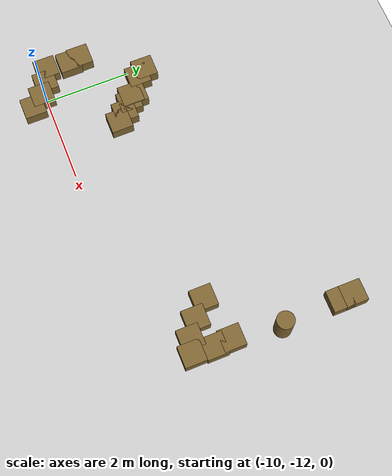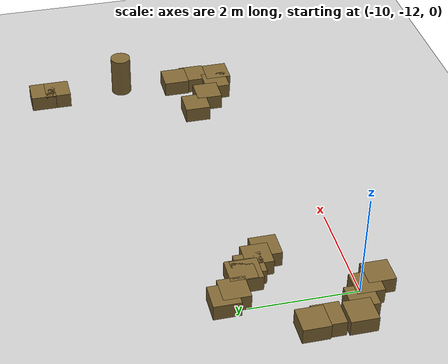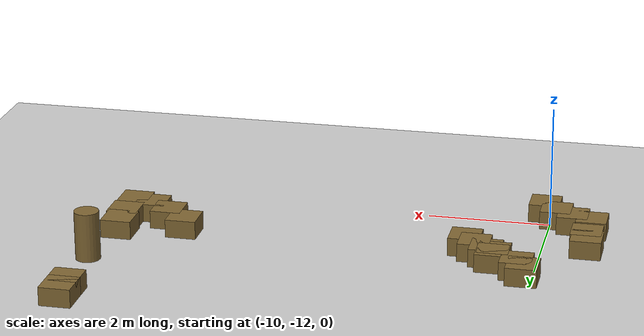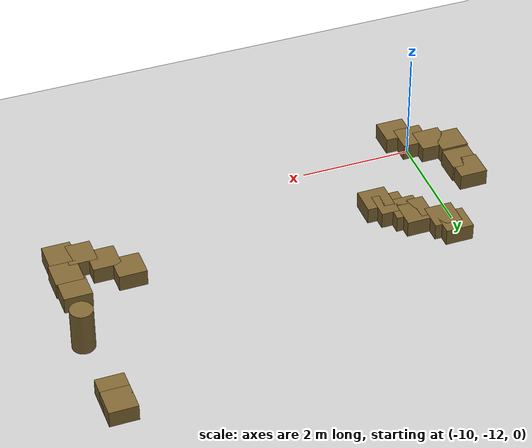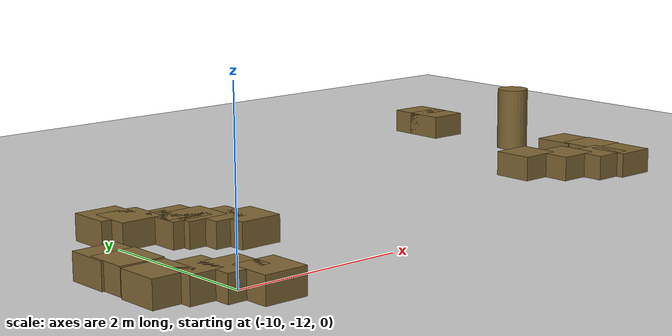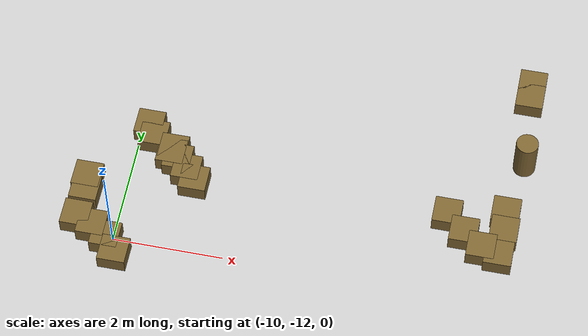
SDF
<sdf version="1.7">
 <world name="default">
  <model name="ground_plane">
   <static>1</static>
   <link name="link">
    <collision name="collision">
     <geometry><plane><normal>0 0 1</normal><size>100 100</size></plane></geometry>
     <surface><friction><ode><mu>100</mu><mu2>50</mu2></ode></friction></surface>
    </collision>
    <visual name="visual">
     <cast_shadows>0</cast_shadows>
     <geometry><plane><normal>0 0 1</normal><size>100 100</size></plane></geometry>
     <material>
      <script><uri>file://media/materials/scripts/gazebo.material</uri><name>Gazebo/Grey</name></script>
     </material>
    </visual>
   </link>
  </model>
  <model name="mini_cylinder_0_clone_0_clone_0_clone_8">
   <link name="link">
    <inertial>
     <mass>1</mass>
     <inertia><ixx>0.145833</ixx><ixy>0</ixy><ixz>0</ixz><iyy>0.145833</iyy><iyz>0</iyz><izz>0.125</izz></inertia>
    </inertial>
    <visual name="visual">
     <geometry><cylinder><radius>0.2</radius><length>0.8</length></cylinder></geometry>
     <material>
      <script><name>Gazebo/Grey</name><uri>file://media/materials/scripts/gazebo.material</uri></script>
      <shader type="vertex"><normal_map>__default__</normal_map></shader>
      <ambient>0.5 0.4 0.2 1</ambient>
      <diffuse>0.7 0.7 0.7 1</diffuse>
      <specular>0.01 0.01 0.01 1</specular>
      <emissive>0 0 0 1</emissive>
     </material>
    </visual>
    <collision name="collision">
     <geometry><cylinder><radius>0.2</radius><length>0.8</length></cylinder></geometry>
     <surface>
      <friction>
       <ode><mu>1</mu><mu2>1</mu2><fdir1>0 0 0</fdir1><slip1>0</slip1><slip2>0</slip2></ode>
       <torsional>
        <coefficient>1</coefficient>
        <patch_radius>0</patch_radius>
        <surface_radius>0</surface_radius>
        <use_patch_radius>1</use_patch_radius>
        <ode><slip>0</slip></ode>
       </torsional>
      </friction>
      <bounce><restitution_coefficient>0</restitution_coefficient><threshold>1e+06</threshold></bounce>
      <contact>
       <collide_without_contact>0</collide_without_contact>
       <collide_without_contact_bitmask>1</collide_without_contact_bitmask>
       <collide_bitmask>1</collide_bitmask>
       <ode>
        <soft_cfm>0</soft_cfm>
        <soft_erp>0.2</soft_erp>
        <kp>1e+13</kp>
        <kd>1</kd>
        <max_vel>0.01</max_vel>
        <min_depth>0</min_depth>
       </ode>
       <bullet>
        <split_impulse>1</split_impulse>
        <split_impulse_penetration_threshold>-0.01</split_impulse_penetration_threshold>
        <soft_cfm>0</soft_cfm>
        <soft_erp>0.2</soft_erp>
        <kp>1e+13</kp>
        <kd>1</kd>
       </bullet>
      </contact>
     </surface>
    </collision>
   </link>
   <static>1</static>
   <pose>-3.04643 -9.08417 0.4 0 -0 0</pose>
  </model>
  <model name="mini_box_clone_clone_3_clone_0_clone_0_clone_9">
   <link name="link">
    <inertial>
     <mass>1</mass>
     <inertia>
      <ixx>0.166667</ixx>
      <ixy>0</ixy>
      <ixz>0</ixz>
      <iyy>0.166667</iyy>
      <iyz>0</iyz>
      <izz>0.166667</izz>
     </inertia>
    </inertial>
    <visual name="visual">
     <geometry><box><size>0.5 0.5 0.3</size></box></geometry>
     <material>
      <script><name>Gazebo/Grey</name><uri>file://media/materials/scripts/gazebo.material</uri></script>
      <shader type="vertex"><normal_map>__default__</normal_map></shader>
      <ambient>0.5 0.4 0.2 1</ambient>
      <diffuse>0.7 0.7 0.7 1</diffuse>
      <specular>0.01 0.01 0.01 1</specular>
      <emissive>0 0 0 1</emissive>
     </material>
    </visual>
    <collision name="collision">
     <geometry><box><size>0.5 0.5 0.3</size></box></geometry>
     <surface>
      <friction>
       <ode><mu>1</mu><mu2>1</mu2><fdir1>0 0 0</fdir1><slip1>0</slip1><slip2>0</slip2></ode>
       <torsional>
        <coefficient>1</coefficient>
        <patch_radius>0</patch_radius>
        <surface_radius>0</surface_radius>
        <use_patch_radius>1</use_patch_radius>
        <ode><slip>0</slip></ode>
       </torsional>
      </friction>
      <bounce><restitution_coefficient>0</restitution_coefficient><threshold>1e+06</threshold></bounce>
      <contact>
       <collide_without_contact>0</collide_without_contact>
       <collide_without_contact_bitmask>1</collide_without_contact_bitmask>
       <collide_bitmask>1</collide_bitmask>
       <ode>
        <soft_cfm>0</soft_cfm>
        <soft_erp>0.2</soft_erp>
        <kp>1e+13</kp>
        <kd>1</kd>
        <max_vel>0.01</max_vel>
        <min_depth>0</min_depth>
       </ode>
       <bullet>
        <split_impulse>1</split_impulse>
        <split_impulse_penetration_threshold>-0.01</split_impulse_penetration_threshold>
        <soft_cfm>0</soft_cfm>
        <soft_erp>0.2</soft_erp>
        <kp>1e+13</kp>
        <kd>1</kd>
       </bullet>
      </contact>
     </surface>
    </collision>
   </link>
   <static>1</static>
   <pose>-10.7131 -10.9191 0.15 0 -0 0</pose>
  </model>
  <model name="mini_box_clone_clone_0_clone_29">
   <link name="link">
    <inertial>
     <mass>1</mass>
     <inertia>
      <ixx>0.166667</ixx>
      <ixy>0</ixy>
      <ixz>0</ixz>
      <iyy>0.166667</iyy>
      <iyz>0</iyz>
      <izz>0.166667</izz>
     </inertia>
    </inertial>
    <visual name="visual">
     <geometry><box><size>0.5 0.5 0.3</size></box></geometry>
     <material>
      <script><name>Gazebo/Grey</name><uri>file://media/materials/scripts/gazebo.material</uri></script>
      <shader type="vertex"><normal_map>__default__</normal_map></shader>
      <ambient>0.5 0.4 0.2 1</ambient>
      <diffuse>0.7 0.7 0.7 1</diffuse>
      <specular>0.01 0.01 0.01 1</specular>
      <emissive>0 0 0 1</emissive>
     </material>
    </visual>
    <collision name="collision">
     <geometry><box><size>0.5 0.5 0.3</size></box></geometry>
     <surface>
      <friction>
       <ode><mu>1</mu><mu2>1</mu2><fdir1>0 0 0</fdir1><slip1>0</slip1><slip2>0</slip2></ode>
       <torsional>
        <coefficient>1</coefficient>
        <patch_radius>0</patch_radius>
        <surface_radius>0</surface_radius>
        <use_patch_radius>1</use_patch_radius>
        <ode><slip>0</slip></ode>
       </torsional>
      </friction>
      <bounce><restitution_coefficient>0</restitution_coefficient><threshold>1e+06</threshold></bounce>
      <contact>
       <collide_without_contact>0</collide_without_contact>
       <collide_without_contact_bitmask>1</collide_without_contact_bitmask>
       <collide_bitmask>1</collide_bitmask>
       <ode>
        <soft_cfm>0</soft_cfm>
        <soft_erp>0.2</soft_erp>
        <kp>1e+13</kp>
        <kd>1</kd>
        <max_vel>0.01</max_vel>
        <min_depth>0</min_depth>
       </ode>
       <bullet>
        <split_impulse>1</split_impulse>
        <split_impulse_penetration_threshold>-0.01</split_impulse_penetration_threshold>
        <soft_cfm>0</soft_cfm>
        <soft_erp>0.2</soft_erp>
        <kp>1e+13</kp>
        <kd>1</kd>
       </bullet>
      </contact>
     </surface>
    </collision>
   </link>
   <static>1</static>
   <pose>-3.1468 -7.71088 0.15 0 -0 0</pose>
  </model>
  <model name="mini_box_clone_clone_0_clone_30">
   <link name="link">
    <inertial>
     <mass>1</mass>
     <inertia>
      <ixx>0.166667</ixx>
      <ixy>0</ixy>
      <ixz>0</ixz>
      <iyy>0.166667</iyy>
      <iyz>0</iyz>
      <izz>0.166667</izz>
     </inertia>
    </inertial>
    <visual name="visual">
     <geometry><box><size>0.5 0.5 0.3</size></box></geometry>
     <material>
      <script><name>Gazebo/Grey</name><uri>file://media/materials/scripts/gazebo.material</uri></script>
      <shader type="vertex"><normal_map>__default__</normal_map></shader>
      <ambient>0.5 0.4 0.2 1</ambient>
      <diffuse>0.7 0.7 0.7 1</diffuse>
      <specular>0.01 0.01 0.01 1</specular>
      <emissive>0 0 0 1</emissive>
     </material>
    </visual>
    <collision name="collision">
     <geometry><box><size>0.5 0.5 0.3</size></box></geometry>
     <surface>
      <friction>
       <ode><mu>1</mu><mu2>1</mu2><fdir1>0 0 0</fdir1><slip1>0</slip1><slip2>0</slip2></ode>
       <torsional>
        <coefficient>1</coefficient>
        <patch_radius>0</patch_radius>
        <surface_radius>0</surface_radius>
        <use_patch_radius>1</use_patch_radius>
        <ode><slip>0</slip></ode>
       </torsional>
      </friction>
      <bounce><restitution_coefficient>0</restitution_coefficient><threshold>1e+06</threshold></bounce>
      <contact>
       <collide_without_contact>0</collide_without_contact>
       <collide_without_contact_bitmask>1</collide_without_contact_bitmask>
       <collide_bitmask>1</collide_bitmask>
       <ode>
        <soft_cfm>0</soft_cfm>
        <soft_erp>0.2</soft_erp>
        <kp>1e+13</kp>
        <kd>1</kd>
        <max_vel>0.01</max_vel>
        <min_depth>0</min_depth>
       </ode>
       <bullet>
        <split_impulse>1</split_impulse>
        <split_impulse_penetration_threshold>-0.01</split_impulse_penetration_threshold>
        <soft_cfm>0</soft_cfm>
        <soft_erp>0.2</soft_erp>
        <kp>1e+13</kp>
        <kd>1</kd>
       </bullet>
      </contact>
     </surface>
    </collision>
   </link>
   <static>1</static>
   <pose>-3.1468 -7.41264 0.15 0 -0 0</pose>
  </model>
  <model name="mini_box_clone_clone_0_clone_42">
   <link name="link">
    <inertial>
     <mass>1</mass>
     <inertia>
      <ixx>0.166667</ixx>
      <ixy>0</ixy>
      <ixz>0</ixz>
      <iyy>0.166667</iyy>
      <iyz>0</iyz>
      <izz>0.166667</izz>
     </inertia>
    </inertial>
    <visual name="visual">
     <geometry><box><size>0.5 0.5 0.3</size></box></geometry>
     <material>
      <script><name>Gazebo/Grey</name><uri>file://media/materials/scripts/gazebo.material</uri></script>
      <shader type="vertex"><normal_map>__default__</normal_map></shader>
      <ambient>0.5 0.4 0.2 1</ambient>
      <diffuse>0.7 0.7 0.7 1</diffuse>
      <specular>0.01 0.01 0.01 1</specular>
      <emissive>0 0 0 1</emissive>
     </material>
    </visual>
    <collision name="collision">
     <geometry><box><size>0.5 0.5 0.3</size></box></geometry>
     <surface>
      <friction>
       <ode><mu>1</mu><mu2>1</mu2><fdir1>0 0 0</fdir1><slip1>0</slip1><slip2>0</slip2></ode>
       <torsional>
        <coefficient>1</coefficient>
        <patch_radius>0</patch_radius>
        <surface_radius>0</surface_radius>
        <use_patch_radius>1</use_patch_radius>
        <ode><slip>0</slip></ode>
       </torsional>
      </friction>
      <bounce><restitution_coefficient>0</restitution_coefficient><threshold>1e+06</threshold></bounce>
      <contact>
       <collide_without_contact>0</collide_without_contact>
       <collide_without_contact_bitmask>1</collide_without_contact_bitmask>
       <collide_bitmask>1</collide_bitmask>
       <ode>
        <soft_cfm>0</soft_cfm>
        <soft_erp>0.2</soft_erp>
        <kp>1e+13</kp>
        <kd>1</kd>
        <max_vel>0.01</max_vel>
        <min_depth>0</min_depth>
       </ode>
       <bullet>
        <split_impulse>1</split_impulse>
        <split_impulse_penetration_threshold>-0.01</split_impulse_penetration_threshold>
        <soft_cfm>0</soft_cfm>
        <soft_erp>0.2</soft_erp>
        <kp>1e+13</kp>
        <kd>1</kd>
       </bullet>
      </contact>
     </surface>
    </collision>
   </link>
   <static>1</static>
   <pose>-3.22144 -11.093 0.15 0 -0 0</pose>
  </model>
  <model name="mini_box_clone_clone_0_clone_43">
   <link name="link">
    <inertial>
     <mass>1</mass>
     <inertia>
      <ixx>0.166667</ixx>
      <ixy>0</ixy>
      <ixz>0</ixz>
      <iyy>0.166667</iyy>
      <iyz>0</iyz>
      <izz>0.166667</izz>
     </inertia>
    </inertial>
    <visual name="visual">
     <geometry><box><size>0.5 0.5 0.3</size></box></geometry>
     <material>
      <script><name>Gazebo/Grey</name><uri>file://media/materials/scripts/gazebo.material</uri></script>
      <shader type="vertex"><normal_map>__default__</normal_map></shader>
      <ambient>0.5 0.4 0.2 1</ambient>
      <diffuse>0.7 0.7 0.7 1</diffuse>
      <specular>0.01 0.01 0.01 1</specular>
      <emissive>0 0 0 1</emissive>
     </material>
    </visual>
    <collision name="collision">
     <geometry><box><size>0.5 0.5 0.3</size></box></geometry>
     <surface>
      <friction>
       <ode><mu>1</mu><mu2>1</mu2><fdir1>0 0 0</fdir1><slip1>0</slip1><slip2>0</slip2></ode>
       <torsional>
        <coefficient>1</coefficient>
        <patch_radius>0</patch_radius>
        <surface_radius>0</surface_radius>
        <use_patch_radius>1</use_patch_radius>
        <ode><slip>0</slip></ode>
       </torsional>
      </friction>
      <bounce><restitution_coefficient>0</restitution_coefficient><threshold>1e+06</threshold></bounce>
      <contact>
       <collide_without_contact>0</collide_without_contact>
       <collide_without_contact_bitmask>1</collide_without_contact_bitmask>
       <collide_bitmask>1</collide_bitmask>
       <ode>
        <soft_cfm>0</soft_cfm>
        <soft_erp>0.2</soft_erp>
        <kp>1e+13</kp>
        <kd>1</kd>
        <max_vel>0.01</max_vel>
        <min_depth>0</min_depth>
       </ode>
       <bullet>
        <split_impulse>1</split_impulse>
        <split_impulse_penetration_threshold>-0.01</split_impulse_penetration_threshold>
        <soft_cfm>0</soft_cfm>
        <soft_erp>0.2</soft_erp>
        <kp>1e+13</kp>
        <kd>1</kd>
       </bullet>
      </contact>
     </surface>
    </collision>
   </link>
   <static>1</static>
   <pose>-3.54472 -11 0.15 0 -0 0</pose>
  </model>
  <model name="mini_box_clone_clone_0_clone_44">
   <link name="link">
    <inertial>
     <mass>1</mass>
     <inertia>
      <ixx>0.166667</ixx>
      <ixy>0</ixy>
      <ixz>0</ixz>
      <iyy>0.166667</iyy>
      <iyz>0</iyz>
      <izz>0.166667</izz>
     </inertia>
    </inertial>
    <visual name="visual">
     <geometry><box><size>0.5 0.5 0.3</size></box></geometry>
     <material>
      <script><name>Gazebo/Grey</name><uri>file://media/materials/scripts/gazebo.material</uri></script>
      <shader type="vertex"><normal_map>__default__</normal_map></shader>
      <ambient>0.5 0.4 0.2 1</ambient>
      <diffuse>0.7 0.7 0.7 1</diffuse>
      <specular>0.01 0.01 0.01 1</specular>
      <emissive>0 0 0 1</emissive>
     </material>
    </visual>
    <collision name="collision">
     <geometry><box><size>0.5 0.5 0.3</size></box></geometry>
     <surface>
      <friction>
       <ode><mu>1</mu><mu2>1</mu2><fdir1>0 0 0</fdir1><slip1>0</slip1><slip2>0</slip2></ode>
       <torsional>
        <coefficient>1</coefficient>
        <patch_radius>0</patch_radius>
        <surface_radius>0</surface_radius>
        <use_patch_radius>1</use_patch_radius>
        <ode><slip>0</slip></ode>
       </torsional>
      </friction>
      <bounce><restitution_coefficient>0</restitution_coefficient><threshold>1e+06</threshold></bounce>
      <contact>
       <collide_without_contact>0</collide_without_contact>
       <collide_without_contact_bitmask>1</collide_without_contact_bitmask>
       <collide_bitmask>1</collide_bitmask>
       <ode>
        <soft_cfm>0</soft_cfm>
        <soft_erp>0.2</soft_erp>
        <kp>1e+13</kp>
        <kd>1</kd>
        <max_vel>0.01</max_vel>
        <min_depth>0</min_depth>
       </ode>
       <bullet>
        <split_impulse>1</split_impulse>
        <split_impulse_penetration_threshold>-0.01</split_impulse_penetration_threshold>
        <soft_cfm>0</soft_cfm>
        <soft_erp>0.2</soft_erp>
        <kp>1e+13</kp>
        <kd>1</kd>
       </bullet>
      </contact>
     </surface>
    </collision>
   </link>
   <static>1</static>
   <pose>-3.89288 -10.7448 0.15 0 -0 0</pose>
  </model>
  <model name="mini_box_clone_clone_0_clone_45">
   <link name="link">
    <inertial>
     <mass>1</mass>
     <inertia>
      <ixx>0.166667</ixx>
      <ixy>0</ixy>
      <ixz>0</ixz>
      <iyy>0.166667</iyy>
      <iyz>0</iyz>
      <izz>0.166667</izz>
     </inertia>
    </inertial>
    <visual name="visual">
     <geometry><box><size>0.5 0.5 0.3</size></box></geometry>
     <material>
      <script><name>Gazebo/Grey</name><uri>file://media/materials/scripts/gazebo.material</uri></script>
      <shader type="vertex"><normal_map>__default__</normal_map></shader>
      <ambient>0.5 0.4 0.2 1</ambient>
      <diffuse>0.7 0.7 0.7 1</diffuse>
      <specular>0.01 0.01 0.01 1</specular>
      <emissive>0 0 0 1</emissive>
     </material>
    </visual>
    <collision name="collision">
     <geometry><box><size>0.5 0.5 0.3</size></box></geometry>
     <surface>
      <friction>
       <ode><mu>1</mu><mu2>1</mu2><fdir1>0 0 0</fdir1><slip1>0</slip1><slip2>0</slip2></ode>
       <torsional>
        <coefficient>1</coefficient>
        <patch_radius>0</patch_radius>
        <surface_radius>0</surface_radius>
        <use_patch_radius>1</use_patch_radius>
        <ode><slip>0</slip></ode>
       </torsional>
      </friction>
      <bounce><restitution_coefficient>0</restitution_coefficient><threshold>1e+06</threshold></bounce>
      <contact>
       <collide_without_contact>0</collide_without_contact>
       <collide_without_contact_bitmask>1</collide_without_contact_bitmask>
       <collide_bitmask>1</collide_bitmask>
       <ode>
        <soft_cfm>0</soft_cfm>
        <soft_erp>0.2</soft_erp>
        <kp>1e+13</kp>
        <kd>1</kd>
        <max_vel>0.01</max_vel>
        <min_depth>0</min_depth>
       </ode>
       <bullet>
        <split_impulse>1</split_impulse>
        <split_impulse_penetration_threshold>-0.01</split_impulse_penetration_threshold>
        <soft_cfm>0</soft_cfm>
        <soft_erp>0.2</soft_erp>
        <kp>1e+13</kp>
        <kd>1</kd>
       </bullet>
      </contact>
     </surface>
    </collision>
   </link>
   <static>1</static>
   <pose>-4.24104 -10.4216 0.15 0 -0 0</pose>
  </model>
  <model name="mini_box_clone_clone_0_clone_46">
   <link name="link">
    <inertial>
     <mass>1</mass>
     <inertia>
      <ixx>0.166667</ixx>
      <ixy>0</ixy>
      <ixz>0</ixz>
      <iyy>0.166667</iyy>
      <iyz>0</iyz>
      <izz>0.166667</izz>
     </inertia>
    </inertial>
    <visual name="visual">
     <geometry><box><size>0.5 0.5 0.3</size></box></geometry>
     <material>
      <script><name>Gazebo/Grey</name><uri>file://media/materials/scripts/gazebo.material</uri></script>
      <shader type="vertex"><normal_map>__default__</normal_map></shader>
      <ambient>0.5 0.4 0.2 1</ambient>
      <diffuse>0.7 0.7 0.7 1</diffuse>
      <specular>0.01 0.01 0.01 1</specular>
      <emissive>0 0 0 1</emissive>
     </material>
    </visual>
    <collision name="collision">
     <geometry><box><size>0.5 0.5 0.3</size></box></geometry>
     <surface>
      <friction>
       <ode><mu>1</mu><mu2>1</mu2><fdir1>0 0 0</fdir1><slip1>0</slip1><slip2>0</slip2></ode>
       <torsional>
        <coefficient>1</coefficient>
        <patch_radius>0</patch_radius>
        <surface_radius>0</surface_radius>
        <use_patch_radius>1</use_patch_radius>
        <ode><slip>0</slip></ode>
       </torsional>
      </friction>
      <bounce><restitution_coefficient>0</restitution_coefficient><threshold>1e+06</threshold></bounce>
      <contact>
       <collide_without_contact>0</collide_without_contact>
       <collide_without_contact_bitmask>1</collide_without_contact_bitmask>
       <collide_bitmask>1</collide_bitmask>
       <ode>
        <soft_cfm>0</soft_cfm>
        <soft_erp>0.2</soft_erp>
        <kp>1e+13</kp>
        <kd>1</kd>
        <max_vel>0.01</max_vel>
        <min_depth>0</min_depth>
       </ode>
       <bullet>
        <split_impulse>1</split_impulse>
        <split_impulse_penetration_threshold>-0.01</split_impulse_penetration_threshold>
        <soft_cfm>0</soft_cfm>
        <soft_erp>0.2</soft_erp>
        <kp>1e+13</kp>
        <kd>1</kd>
       </bullet>
      </contact>
     </surface>
    </collision>
   </link>
   <static>1</static>
   <pose>-3.19656 -10.5957 0.15 0 -0 0</pose>
  </model>
  <model name="mini_box_clone_clone_0_clone_47">
   <link name="link">
    <inertial>
     <mass>1</mass>
     <inertia>
      <ixx>0.166667</ixx>
      <ixy>0</ixy>
      <ixz>0</ixz>
      <iyy>0.166667</iyy>
      <iyz>0</iyz>
      <izz>0.166667</izz>
     </inertia>
    </inertial>
    <visual name="visual">
     <geometry><box><size>0.5 0.5 0.3</size></box></geometry>
     <material>
      <script><name>Gazebo/Grey</name><uri>file://media/materials/scripts/gazebo.material</uri></script>
      <shader type="vertex"><normal_map>__default__</normal_map></shader>
      <ambient>0.5 0.4 0.2 1</ambient>
      <diffuse>0.7 0.7 0.7 1</diffuse>
      <specular>0.01 0.01 0.01 1</specular>
      <emissive>0 0 0 1</emissive>
     </material>
    </visual>
    <collision name="collision">
     <geometry><box><size>0.5 0.5 0.3</size></box></geometry>
     <surface>
      <friction>
       <ode><mu>1</mu><mu2>1</mu2><fdir1>0 0 0</fdir1><slip1>0</slip1><slip2>0</slip2></ode>
       <torsional>
        <coefficient>1</coefficient>
        <patch_radius>0</patch_radius>
        <surface_radius>0</surface_radius>
        <use_patch_radius>1</use_patch_radius>
        <ode><slip>0</slip></ode>
       </torsional>
      </friction>
      <bounce><restitution_coefficient>0</restitution_coefficient><threshold>1e+06</threshold></bounce>
      <contact>
       <collide_without_contact>0</collide_without_contact>
       <collide_without_contact_bitmask>1</collide_without_contact_bitmask>
       <collide_bitmask>1</collide_bitmask>
       <ode>
        <soft_cfm>0</soft_cfm>
        <soft_erp>0.2</soft_erp>
        <kp>1e+13</kp>
        <kd>1</kd>
        <max_vel>0.01</max_vel>
        <min_depth>0</min_depth>
       </ode>
       <bullet>
        <split_impulse>1</split_impulse>
        <split_impulse_penetration_threshold>-0.01</split_impulse_penetration_threshold>
        <soft_cfm>0</soft_cfm>
        <soft_erp>0.2</soft_erp>
        <kp>1e+13</kp>
        <kd>1</kd>
       </bullet>
      </contact>
     </surface>
    </collision>
   </link>
   <static>1</static>
   <pose>-3.22144 -10.1979 0.15 0 -0 0</pose>
  </model>
  <model name="mini_box_clone_clone_0_clone_65">
   <link name="link">
    <inertial>
     <mass>1</mass>
     <inertia>
      <ixx>0.166667</ixx>
      <ixy>0</ixy>
      <ixz>0</ixz>
      <iyy>0.166667</iyy>
      <iyz>0</iyz>
      <izz>0.166667</izz>
     </inertia>
    </inertial>
    <visual name="visual">
     <geometry><box><size>0.5 0.5 0.3</size></box></geometry>
     <material>
      <script><name>Gazebo/Grey</name><uri>file://media/materials/scripts/gazebo.material</uri></script>
      <shader type="vertex"><normal_map>__default__</normal_map></shader>
      <ambient>0.5 0.4 0.2 1</ambient>
      <diffuse>0.7 0.7 0.7 1</diffuse>
      <specular>0.01 0.01 0.01 1</specular>
      <emissive>0 0 0 1</emissive>
     </material>
    </visual>
    <collision name="collision">
     <geometry><box><size>0.5 0.5 0.3</size></box></geometry>
     <surface>
      <friction>
       <ode><mu>1</mu><mu2>1</mu2><fdir1>0 0 0</fdir1><slip1>0</slip1><slip2>0</slip2></ode>
       <torsional>
        <coefficient>1</coefficient>
        <patch_radius>0</patch_radius>
        <surface_radius>0</surface_radius>
        <use_patch_radius>1</use_patch_radius>
        <ode><slip>0</slip></ode>
       </torsional>
      </friction>
      <bounce><restitution_coefficient>0</restitution_coefficient><threshold>1e+06</threshold></bounce>
      <contact>
       <collide_without_contact>0</collide_without_contact>
       <collide_without_contact_bitmask>1</collide_without_contact_bitmask>
       <collide_bitmask>1</collide_bitmask>
       <ode>
        <soft_cfm>0</soft_cfm>
        <soft_erp>0.2</soft_erp>
        <kp>1e+13</kp>
        <kd>1</kd>
        <max_vel>0.01</max_vel>
        <min_depth>0</min_depth>
       </ode>
       <bullet>
        <split_impulse>1</split_impulse>
        <split_impulse_penetration_threshold>-0.01</split_impulse_penetration_threshold>
        <soft_cfm>0</soft_cfm>
        <soft_erp>0.2</soft_erp>
        <kp>1e+13</kp>
        <kd>1</kd>
       </bullet>
      </contact>
     </surface>
    </collision>
   </link>
   <static>1</static>
   <pose>-10.686 -11.1959 0.15 0 -0 0</pose>
  </model>
  <model name="mini_box_clone_clone_0_clone_66">
   <link name="link">
    <inertial>
     <mass>1</mass>
     <inertia>
      <ixx>0.166667</ixx>
      <ixy>0</ixy>
      <ixz>0</ixz>
      <iyy>0.166667</iyy>
      <iyz>0</iyz>
      <izz>0.166667</izz>
     </inertia>
    </inertial>
    <visual name="visual">
     <geometry><box><size>0.5 0.5 0.3</size></box></geometry>
     <material>
      <script><name>Gazebo/Grey</name><uri>file://media/materials/scripts/gazebo.material</uri></script>
      <shader type="vertex"><normal_map>__default__</normal_map></shader>
      <ambient>0.5 0.4 0.2 1</ambient>
      <diffuse>0.7 0.7 0.7 1</diffuse>
      <specular>0.01 0.01 0.01 1</specular>
      <emissive>0 0 0 1</emissive>
     </material>
    </visual>
    <collision name="collision">
     <geometry><box><size>0.5 0.5 0.3</size></box></geometry>
     <surface>
      <friction>
       <ode><mu>1</mu><mu2>1</mu2><fdir1>0 0 0</fdir1><slip1>0</slip1><slip2>0</slip2></ode>
       <torsional>
        <coefficient>1</coefficient>
        <patch_radius>0</patch_radius>
        <surface_radius>0</surface_radius>
        <use_patch_radius>1</use_patch_radius>
        <ode><slip>0</slip></ode>
       </torsional>
      </friction>
      <bounce><restitution_coefficient>0</restitution_coefficient><threshold>1e+06</threshold></bounce>
      <contact>
       <collide_without_contact>0</collide_without_contact>
       <collide_without_contact_bitmask>1</collide_without_contact_bitmask>
       <collide_bitmask>1</collide_bitmask>
       <ode>
        <soft_cfm>0</soft_cfm>
        <soft_erp>0.2</soft_erp>
        <kp>1e+13</kp>
        <kd>1</kd>
        <max_vel>0.01</max_vel>
        <min_depth>0</min_depth>
       </ode>
       <bullet>
        <split_impulse>1</split_impulse>
        <split_impulse_penetration_threshold>-0.01</split_impulse_penetration_threshold>
        <soft_cfm>0</soft_cfm>
        <soft_erp>0.2</soft_erp>
        <kp>1e+13</kp>
        <kd>1</kd>
       </bullet>
      </contact>
     </surface>
    </collision>
   </link>
   <static>1</static>
   <pose>-10.7109 -11.7428 0.15 0 -0 0</pose>
  </model>
  <model name="mini_box_clone_clone_0_clone_67">
   <link name="link">
    <inertial>
     <mass>1</mass>
     <inertia>
      <ixx>0.166667</ixx>
      <ixy>0</ixy>
      <ixz>0</ixz>
      <iyy>0.166667</iyy>
      <iyz>0</iyz>
      <izz>0.166667</izz>
     </inertia>
    </inertial>
    <visual name="visual">
     <geometry><box><size>0.5 0.5 0.3</size></box></geometry>
     <material>
      <script><name>Gazebo/Grey</name><uri>file://media/materials/scripts/gazebo.material</uri></script>
      <shader type="vertex"><normal_map>__default__</normal_map></shader>
      <ambient>0.5 0.4 0.2 1</ambient>
      <diffuse>0.7 0.7 0.7 1</diffuse>
      <specular>0.01 0.01 0.01 1</specular>
      <emissive>0 0 0 1</emissive>
     </material>
    </visual>
    <collision name="collision">
     <geometry><box><size>0.5 0.5 0.3</size></box></geometry>
     <surface>
      <friction>
       <ode><mu>1</mu><mu2>1</mu2><fdir1>0 0 0</fdir1><slip1>0</slip1><slip2>0</slip2></ode>
       <torsional>
        <coefficient>1</coefficient>
        <patch_radius>0</patch_radius>
        <surface_radius>0</surface_radius>
        <use_patch_radius>1</use_patch_radius>
        <ode><slip>0</slip></ode>
       </torsional>
      </friction>
      <bounce><restitution_coefficient>0</restitution_coefficient><threshold>1e+06</threshold></bounce>
      <contact>
       <collide_without_contact>0</collide_without_contact>
       <collide_without_contact_bitmask>1</collide_without_contact_bitmask>
       <collide_bitmask>1</collide_bitmask>
       <ode>
        <soft_cfm>0</soft_cfm>
        <soft_erp>0.2</soft_erp>
        <kp>1e+13</kp>
        <kd>1</kd>
        <max_vel>0.01</max_vel>
        <min_depth>0</min_depth>
       </ode>
       <bullet>
        <split_impulse>1</split_impulse>
        <split_impulse_penetration_threshold>-0.01</split_impulse_penetration_threshold>
        <soft_cfm>0</soft_cfm>
        <soft_erp>0.2</soft_erp>
        <kp>1e+13</kp>
        <kd>1</kd>
       </bullet>
      </contact>
     </surface>
    </collision>
   </link>
   <static>1</static>
   <pose>-9.86753 -9.62463 0.15 0 -0 0</pose>
  </model>
  <model name="mini_box_clone_clone_0_clone_68">
   <link name="link">
    <inertial>
     <mass>1</mass>
     <inertia>
      <ixx>0.166667</ixx>
      <ixy>0</ixy>
      <ixz>0</ixz>
      <iyy>0.166667</iyy>
      <iyz>0</iyz>
      <izz>0.166667</izz>
     </inertia>
    </inertial>
    <visual name="visual">
     <geometry><box><size>0.5 0.5 0.3</size></box></geometry>
     <material>
      <script><name>Gazebo/Grey</name><uri>file://media/materials/scripts/gazebo.material</uri></script>
      <shader type="vertex"><normal_map>__default__</normal_map></shader>
      <ambient>0.5 0.4 0.2 1</ambient>
      <diffuse>0.7 0.7 0.7 1</diffuse>
      <specular>0.01 0.01 0.01 1</specular>
      <emissive>0 0 0 1</emissive>
     </material>
    </visual>
    <collision name="collision">
     <geometry><box><size>0.5 0.5 0.3</size></box></geometry>
     <surface>
      <friction>
       <ode><mu>1</mu><mu2>1</mu2><fdir1>0 0 0</fdir1><slip1>0</slip1><slip2>0</slip2></ode>
       <torsional>
        <coefficient>1</coefficient>
        <patch_radius>0</patch_radius>
        <surface_radius>0</surface_radius>
        <use_patch_radius>1</use_patch_radius>
        <ode><slip>0</slip></ode>
       </torsional>
      </friction>
      <bounce><restitution_coefficient>0</restitution_coefficient><threshold>1e+06</threshold></bounce>
      <contact>
       <collide_without_contact>0</collide_without_contact>
       <collide_without_contact_bitmask>1</collide_without_contact_bitmask>
       <collide_bitmask>1</collide_bitmask>
       <ode>
        <soft_cfm>0</soft_cfm>
        <soft_erp>0.2</soft_erp>
        <kp>1e+13</kp>
        <kd>1</kd>
        <max_vel>0.01</max_vel>
        <min_depth>0</min_depth>
       </ode>
       <bullet>
        <split_impulse>1</split_impulse>
        <split_impulse_penetration_threshold>-0.01</split_impulse_penetration_threshold>
        <soft_cfm>0</soft_cfm>
        <soft_erp>0.2</soft_erp>
        <kp>1e+13</kp>
        <kd>1</kd>
       </bullet>
      </contact>
     </surface>
    </collision>
   </link>
   <static>1</static>
   <pose>-9.74426 -9.82515 0.15 0 -0 0</pose>
  </model>
  <model name="mini_box_clone_clone_0_clone_69">
   <link name="link">
    <inertial>
     <mass>1</mass>
     <inertia>
      <ixx>0.166667</ixx>
      <ixy>0</ixy>
      <ixz>0</ixz>
      <iyy>0.166667</iyy>
      <iyz>0</iyz>
      <izz>0.166667</izz>
     </inertia>
    </inertial>
    <visual name="visual">
     <geometry><box><size>0.5 0.5 0.3</size></box></geometry>
     <material>
      <script><name>Gazebo/Grey</name><uri>file://media/materials/scripts/gazebo.material</uri></script>
      <shader type="vertex"><normal_map>__default__</normal_map></shader>
      <ambient>0.5 0.4 0.2 1</ambient>
      <diffuse>0.7 0.7 0.7 1</diffuse>
      <specular>0.01 0.01 0.01 1</specular>
      <emissive>0 0 0 1</emissive>
     </material>
    </visual>
    <collision name="collision">
     <geometry><box><size>0.5 0.5 0.3</size></box></geometry>
     <surface>
      <friction>
       <ode><mu>1</mu><mu2>1</mu2><fdir1>0 0 0</fdir1><slip1>0</slip1><slip2>0</slip2></ode>
       <torsional>
        <coefficient>1</coefficient>
        <patch_radius>0</patch_radius>
        <surface_radius>0</surface_radius>
        <use_patch_radius>1</use_patch_radius>
        <ode><slip>0</slip></ode>
       </torsional>
      </friction>
      <bounce><restitution_coefficient>0</restitution_coefficient><threshold>1e+06</threshold></bounce>
      <contact>
       <collide_without_contact>0</collide_without_contact>
       <collide_without_contact_bitmask>1</collide_without_contact_bitmask>
       <collide_bitmask>1</collide_bitmask>
       <ode>
        <soft_cfm>0</soft_cfm>
        <soft_erp>0.2</soft_erp>
        <kp>1e+13</kp>
        <kd>1</kd>
        <max_vel>0.01</max_vel>
        <min_depth>0</min_depth>
       </ode>
       <bullet>
        <split_impulse>1</split_impulse>
        <split_impulse_penetration_threshold>-0.01</split_impulse_penetration_threshold>
        <soft_cfm>0</soft_cfm>
        <soft_erp>0.2</soft_erp>
        <kp>1e+13</kp>
        <kd>1</kd>
       </bullet>
      </contact>
     </surface>
    </collision>
   </link>
   <static>1</static>
   <pose>-9.32805 -10.0562 0.15 0 -0 0</pose>
  </model>
  <model name="mini_box_clone_clone_0_clone_70">
   <link name="link">
    <inertial>
     <mass>1</mass>
     <inertia>
      <ixx>0.166667</ixx>
      <ixy>0</ixy>
      <ixz>0</ixz>
      <iyy>0.166667</iyy>
      <iyz>0</iyz>
      <izz>0.166667</izz>
     </inertia>
    </inertial>
    <visual name="visual">
     <geometry><box><size>0.5 0.5 0.3</size></box></geometry>
     <material>
      <script><name>Gazebo/Grey</name><uri>file://media/materials/scripts/gazebo.material</uri></script>
      <shader type="vertex"><normal_map>__default__</normal_map></shader>
      <ambient>0.5 0.4 0.2 1</ambient>
      <diffuse>0.7 0.7 0.7 1</diffuse>
      <specular>0.01 0.01 0.01 1</specular>
      <emissive>0 0 0 1</emissive>
     </material>
    </visual>
    <collision name="collision">
     <geometry><box><size>0.5 0.5 0.3</size></box></geometry>
     <surface>
      <friction>
       <ode><mu>1</mu><mu2>1</mu2><fdir1>0 0 0</fdir1><slip1>0</slip1><slip2>0</slip2></ode>
       <torsional>
        <coefficient>1</coefficient>
        <patch_radius>0</patch_radius>
        <surface_radius>0</surface_radius>
        <use_patch_radius>1</use_patch_radius>
        <ode><slip>0</slip></ode>
       </torsional>
      </friction>
      <bounce><restitution_coefficient>0</restitution_coefficient><threshold>1e+06</threshold></bounce>
      <contact>
       <collide_without_contact>0</collide_without_contact>
       <collide_without_contact_bitmask>1</collide_without_contact_bitmask>
       <collide_bitmask>1</collide_bitmask>
       <ode>
        <soft_cfm>0</soft_cfm>
        <soft_erp>0.2</soft_erp>
        <kp>1e+13</kp>
        <kd>1</kd>
        <max_vel>0.01</max_vel>
        <min_depth>0</min_depth>
       </ode>
       <bullet>
        <split_impulse>1</split_impulse>
        <split_impulse_penetration_threshold>-0.01</split_impulse_penetration_threshold>
        <soft_cfm>0</soft_cfm>
        <soft_erp>0.2</soft_erp>
        <kp>1e+13</kp>
        <kd>1</kd>
       </bullet>
      </contact>
     </surface>
    </collision>
   </link>
   <static>1</static>
   <pose>-9.34372 -10.1488 0.15 0 -0 0</pose>
  </model>
  <model name="mini_box_clone_clone_0_clone_71">
   <link name="link">
    <inertial>
     <mass>1</mass>
     <inertia>
      <ixx>0.166667</ixx>
      <ixy>0</ixy>
      <ixz>0</ixz>
      <iyy>0.166667</iyy>
      <iyz>0</iyz>
      <izz>0.166667</izz>
     </inertia>
    </inertial>
    <visual name="visual">
     <geometry><box><size>0.5 0.5 0.3</size></box></geometry>
     <material>
      <script><name>Gazebo/Grey</name><uri>file://media/materials/scripts/gazebo.material</uri></script>
      <shader type="vertex"><normal_map>__default__</normal_map></shader>
      <ambient>0.5 0.4 0.2 1</ambient>
      <diffuse>0.7 0.7 0.7 1</diffuse>
      <specular>0.01 0.01 0.01 1</specular>
      <emissive>0 0 0 1</emissive>
     </material>
    </visual>
    <collision name="collision">
     <geometry><box><size>0.5 0.5 0.3</size></box></geometry>
     <surface>
      <friction>
       <ode><mu>1</mu><mu2>1</mu2><fdir1>0 0 0</fdir1><slip1>0</slip1><slip2>0</slip2></ode>
       <torsional>
        <coefficient>1</coefficient>
        <patch_radius>0</patch_radius>
        <surface_radius>0</surface_radius>
        <use_patch_radius>1</use_patch_radius>
        <ode><slip>0</slip></ode>
       </torsional>
      </friction>
      <bounce><restitution_coefficient>0</restitution_coefficient><threshold>1e+06</threshold></bounce>
      <contact>
       <collide_without_contact>0</collide_without_contact>
       <collide_without_contact_bitmask>1</collide_without_contact_bitmask>
       <collide_bitmask>1</collide_bitmask>
       <ode>
        <soft_cfm>0</soft_cfm>
        <soft_erp>0.2</soft_erp>
        <kp>1e+13</kp>
        <kd>1</kd>
        <max_vel>0.01</max_vel>
        <min_depth>0</min_depth>
       </ode>
       <bullet>
        <split_impulse>1</split_impulse>
        <split_impulse_penetration_threshold>-0.01</split_impulse_penetration_threshold>
        <soft_cfm>0</soft_cfm>
        <soft_erp>0.2</soft_erp>
        <kp>1e+13</kp>
        <kd>1</kd>
       </bullet>
      </contact>
     </surface>
    </collision>
   </link>
   <static>1</static>
   <pose>-9.20478 -10.2413 0.15 0 -0 0</pose>
  </model>
  <model name="mini_box_clone_clone_0_clone_72">
   <link name="link">
    <inertial>
     <mass>1</mass>
     <inertia>
      <ixx>0.166667</ixx>
      <ixy>0</ixy>
      <ixz>0</ixz>
      <iyy>0.166667</iyy>
      <iyz>0</iyz>
      <izz>0.166667</izz>
     </inertia>
    </inertial>
    <visual name="visual">
     <geometry><box><size>0.5 0.5 0.3</size></box></geometry>
     <material>
      <script><name>Gazebo/Grey</name><uri>file://media/materials/scripts/gazebo.material</uri></script>
      <shader type="vertex"><normal_map>__default__</normal_map></shader>
      <ambient>0.5 0.4 0.2 1</ambient>
      <diffuse>0.7 0.7 0.7 1</diffuse>
      <specular>0.01 0.01 0.01 1</specular>
      <emissive>0 0 0 1</emissive>
     </material>
    </visual>
    <collision name="collision">
     <geometry><box><size>0.5 0.5 0.3</size></box></geometry>
     <surface>
      <friction>
       <ode><mu>1</mu><mu2>1</mu2><fdir1>0 0 0</fdir1><slip1>0</slip1><slip2>0</slip2></ode>
       <torsional>
        <coefficient>1</coefficient>
        <patch_radius>0</patch_radius>
        <surface_radius>0</surface_radius>
        <use_patch_radius>1</use_patch_radius>
        <ode><slip>0</slip></ode>
       </torsional>
      </friction>
      <bounce><restitution_coefficient>0</restitution_coefficient><threshold>1e+06</threshold></bounce>
      <contact>
       <collide_without_contact>0</collide_without_contact>
       <collide_without_contact_bitmask>1</collide_without_contact_bitmask>
       <collide_bitmask>1</collide_bitmask>
       <ode>
        <soft_cfm>0</soft_cfm>
        <soft_erp>0.2</soft_erp>
        <kp>1e+13</kp>
        <kd>1</kd>
        <max_vel>0.01</max_vel>
        <min_depth>0</min_depth>
       </ode>
       <bullet>
        <split_impulse>1</split_impulse>
        <split_impulse_penetration_threshold>-0.01</split_impulse_penetration_threshold>
        <soft_cfm>0</soft_cfm>
        <soft_erp>0.2</soft_erp>
        <kp>1e+13</kp>
        <kd>1</kd>
       </bullet>
      </contact>
     </surface>
    </collision>
   </link>
   <static>1</static>
   <pose>-9 -10.4263 0.15 0 -0 0</pose>
  </model>
  <model name="mini_box_clone_clone_0_clone_73">
   <link name="link">
    <inertial>
     <mass>1</mass>
     <inertia>
      <ixx>0.166667</ixx>
      <ixy>0</ixy>
      <ixz>0</ixz>
      <iyy>0.166667</iyy>
      <iyz>0</iyz>
      <izz>0.166667</izz>
     </inertia>
    </inertial>
    <visual name="visual">
     <geometry><box><size>0.5 0.5 0.3</size></box></geometry>
     <material>
      <script><name>Gazebo/Grey</name><uri>file://media/materials/scripts/gazebo.material</uri></script>
      <shader type="vertex"><normal_map>__default__</normal_map></shader>
      <ambient>0.5 0.4 0.2 1</ambient>
      <diffuse>0.7 0.7 0.7 1</diffuse>
      <specular>0.01 0.01 0.01 1</specular>
      <emissive>0 0 0 1</emissive>
     </material>
    </visual>
    <collision name="collision">
     <geometry><box><size>0.5 0.5 0.3</size></box></geometry>
     <surface>
      <friction>
       <ode><mu>1</mu><mu2>1</mu2><fdir1>0 0 0</fdir1><slip1>0</slip1><slip2>0</slip2></ode>
       <torsional>
        <coefficient>1</coefficient>
        <patch_radius>0</patch_radius>
        <surface_radius>0</surface_radius>
        <use_patch_radius>1</use_patch_radius>
        <ode><slip>0</slip></ode>
       </torsional>
      </friction>
      <bounce><restitution_coefficient>0</restitution_coefficient><threshold>1e+06</threshold></bounce>
      <contact>
       <collide_without_contact>0</collide_without_contact>
       <collide_without_contact_bitmask>1</collide_without_contact_bitmask>
       <collide_bitmask>1</collide_bitmask>
       <ode>
        <soft_cfm>0</soft_cfm>
        <soft_erp>0.2</soft_erp>
        <kp>1e+13</kp>
        <kd>1</kd>
        <max_vel>0.01</max_vel>
        <min_depth>0</min_depth>
       </ode>
       <bullet>
        <split_impulse>1</split_impulse>
        <split_impulse_penetration_threshold>-0.01</split_impulse_penetration_threshold>
        <soft_cfm>0</soft_cfm>
        <soft_erp>0.2</soft_erp>
        <kp>1e+13</kp>
        <kd>1</kd>
       </bullet>
      </contact>
     </surface>
    </collision>
   </link>
   <static>1</static>
   <pose>-8.81941 -10.6264 0.15 0 -0 0</pose>
  </model>
  <model name="mini_box_clone_clone_0_clone_74">
   <link name="link">
    <inertial>
     <mass>1</mass>
     <inertia>
      <ixx>0.166667</ixx>
      <ixy>0</ixy>
      <ixz>0</ixz>
      <iyy>0.166667</iyy>
      <iyz>0</iyz>
      <izz>0.166667</izz>
     </inertia>
    </inertial>
    <visual name="visual">
     <geometry><box><size>0.5 0.5 0.3</size></box></geometry>
     <material>
      <script><name>Gazebo/Grey</name><uri>file://media/materials/scripts/gazebo.material</uri></script>
      <shader type="vertex"><normal_map>__default__</normal_map></shader>
      <ambient>0.5 0.4 0.2 1</ambient>
      <diffuse>0.7 0.7 0.7 1</diffuse>
      <specular>0.01 0.01 0.01 1</specular>
      <emissive>0 0 0 1</emissive>
     </material>
    </visual>
    <collision name="collision">
     <geometry><box><size>0.5 0.5 0.3</size></box></geometry>
     <surface>
      <friction>
       <ode><mu>1</mu><mu2>1</mu2><fdir1>0 0 0</fdir1><slip1>0</slip1><slip2>0</slip2></ode>
       <torsional>
        <coefficient>1</coefficient>
        <patch_radius>0</patch_radius>
        <surface_radius>0</surface_radius>
        <use_patch_radius>1</use_patch_radius>
        <ode><slip>0</slip></ode>
       </torsional>
      </friction>
      <bounce><restitution_coefficient>0</restitution_coefficient><threshold>1e+06</threshold></bounce>
      <contact>
       <collide_without_contact>0</collide_without_contact>
       <collide_without_contact_bitmask>1</collide_without_contact_bitmask>
       <collide_bitmask>1</collide_bitmask>
       <ode>
        <soft_cfm>0</soft_cfm>
        <soft_erp>0.2</soft_erp>
        <kp>1e+13</kp>
        <kd>1</kd>
        <max_vel>0.01</max_vel>
        <min_depth>0</min_depth>
       </ode>
       <bullet>
        <split_impulse>1</split_impulse>
        <split_impulse_penetration_threshold>-0.01</split_impulse_penetration_threshold>
        <soft_cfm>0</soft_cfm>
        <soft_erp>0.2</soft_erp>
        <kp>1e+13</kp>
        <kd>1</kd>
       </bullet>
      </contact>
     </surface>
    </collision>
   </link>
   <static>1</static>
   <pose>-10.3916 -11.8752 0.15 0 -0 0</pose>
  </model>
  <model name="mini_box_clone_clone_0_clone_75">
   <link name="link">
    <inertial>
     <mass>1</mass>
     <inertia>
      <ixx>0.166667</ixx>
      <ixy>0</ixy>
      <ixz>0</ixz>
      <iyy>0.166667</iyy>
      <iyz>0</iyz>
      <izz>0.166667</izz>
     </inertia>
    </inertial>
    <visual name="visual">
     <geometry><box><size>0.5 0.5 0.3</size></box></geometry>
     <material>
      <script><name>Gazebo/Grey</name><uri>file://media/materials/scripts/gazebo.material</uri></script>
      <shader type="vertex"><normal_map>__default__</normal_map></shader>
      <ambient>0.5 0.4 0.2 1</ambient>
      <diffuse>0.7 0.7 0.7 1</diffuse>
      <specular>0.01 0.01 0.01 1</specular>
      <emissive>0 0 0 1</emissive>
     </material>
    </visual>
    <collision name="collision">
     <geometry><box><size>0.5 0.5 0.3</size></box></geometry>
     <surface>
      <friction>
       <ode><mu>1</mu><mu2>1</mu2><fdir1>0 0 0</fdir1><slip1>0</slip1><slip2>0</slip2></ode>
       <torsional>
        <coefficient>1</coefficient>
        <patch_radius>0</patch_radius>
        <surface_radius>0</surface_radius>
        <use_patch_radius>1</use_patch_radius>
        <ode><slip>0</slip></ode>
       </torsional>
      </friction>
      <bounce><restitution_coefficient>0</restitution_coefficient><threshold>1e+06</threshold></bounce>
      <contact>
       <collide_without_contact>0</collide_without_contact>
       <collide_without_contact_bitmask>1</collide_without_contact_bitmask>
       <collide_bitmask>1</collide_bitmask>
       <ode>
        <soft_cfm>0</soft_cfm>
        <soft_erp>0.2</soft_erp>
        <kp>1e+13</kp>
        <kd>1</kd>
        <max_vel>0.01</max_vel>
        <min_depth>0</min_depth>
       </ode>
       <bullet>
        <split_impulse>1</split_impulse>
        <split_impulse_penetration_threshold>-0.01</split_impulse_penetration_threshold>
        <soft_cfm>0</soft_cfm>
        <soft_erp>0.2</soft_erp>
        <kp>1e+13</kp>
        <kd>1</kd>
       </bullet>
      </contact>
     </surface>
    </collision>
   </link>
   <static>1</static>
   <pose>-10.0989 -12.06 0.15 0 -0 0</pose>
  </model>
  <model name="mini_box_clone_clone_0_clone_76">
   <link name="link">
    <inertial>
     <mass>1</mass>
     <inertia>
      <ixx>0.166667</ixx>
      <ixy>0</ixy>
      <ixz>0</ixz>
      <iyy>0.166667</iyy>
      <iyz>0</iyz>
      <izz>0.166667</izz>
     </inertia>
    </inertial>
    <visual name="visual">
     <geometry><box><size>0.5 0.5 0.3</size></box></geometry>
     <material>
      <script><name>Gazebo/Grey</name><uri>file://media/materials/scripts/gazebo.material</uri></script>
      <shader type="vertex"><normal_map>__default__</normal_map></shader>
      <ambient>0.5 0.4 0.2 1</ambient>
      <diffuse>0.7 0.7 0.7 1</diffuse>
      <specular>0.01 0.01 0.01 1</specular>
      <emissive>0 0 0 1</emissive>
     </material>
    </visual>
    <collision name="collision">
     <geometry><box><size>0.5 0.5 0.3</size></box></geometry>
     <surface>
      <friction>
       <ode><mu>1</mu><mu2>1</mu2><fdir1>0 0 0</fdir1><slip1>0</slip1><slip2>0</slip2></ode>
       <torsional>
        <coefficient>1</coefficient>
        <patch_radius>0</patch_radius>
        <surface_radius>0</surface_radius>
        <use_patch_radius>1</use_patch_radius>
        <ode><slip>0</slip></ode>
       </torsional>
      </friction>
      <bounce><restitution_coefficient>0</restitution_coefficient><threshold>1e+06</threshold></bounce>
      <contact>
       <collide_without_contact>0</collide_without_contact>
       <collide_without_contact_bitmask>1</collide_without_contact_bitmask>
       <collide_bitmask>1</collide_bitmask>
       <ode>
        <soft_cfm>0</soft_cfm>
        <soft_erp>0.2</soft_erp>
        <kp>1e+13</kp>
        <kd>1</kd>
        <max_vel>0.01</max_vel>
        <min_depth>0</min_depth>
       </ode>
       <bullet>
        <split_impulse>1</split_impulse>
        <split_impulse_penetration_threshold>-0.01</split_impulse_penetration_threshold>
        <soft_cfm>0</soft_cfm>
        <soft_erp>0.2</soft_erp>
        <kp>1e+13</kp>
        <kd>1</kd>
       </bullet>
      </contact>
     </surface>
    </collision>
   </link>
   <static>1</static>
   <pose>-9.88319 -12.3375 0.15 0 -0 0</pose>
  </model>
 </world>
</sdf>
